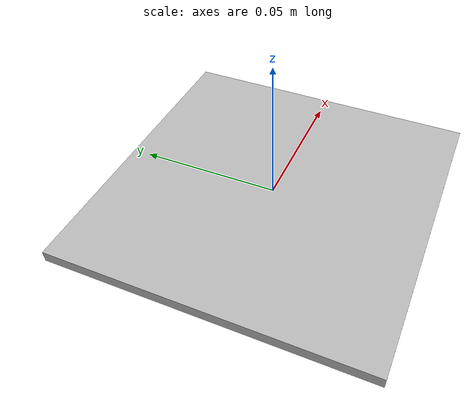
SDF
<?xml version='1.0'?>
<sdf version='1.7'>
  <model name='marker000'>
    <link name='link'>
      <self_collide>0</self_collide>
      <inertial>
        <pose>0 0 0 0 -0 0</pose>
        <inertia>
          <ixx>1</ixx>
          <ixy>0</ixy>
          <ixz>0</ixz>
          <iyy>1</iyy>
          <iyz>0</iyz>
          <izz>1</izz>
        </inertia>
        <mass>1</mass>
      </inertial>
      <enable_wind>0</enable_wind>
      <kinematic>0</kinematic>
      <pose>0 0 0 0 -0 0</pose>
      <visual name='visual'>
        <geometry>
          <box>
            <size>0.11 0.11 0.004</size>
          </box>
        </geometry>
        <material>
          <script>
            <uri>model://marker000/materials/marker000.material</uri>
            <name>marker000</name>
          </script>
          <shader type='pixel'/>
        </material>
        <pose>0 0 0 0 -0 0</pose>
        <transparency>0</transparency>
        <cast_shadows>1</cast_shadows>
      </visual>
    </link>
    <static>1</static>
    <allow_auto_disable>1</allow_auto_disable>
  </model>
</sdf>
